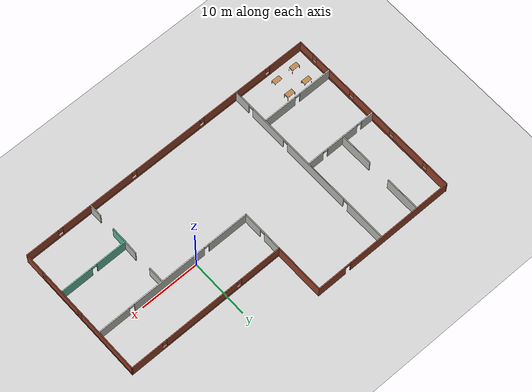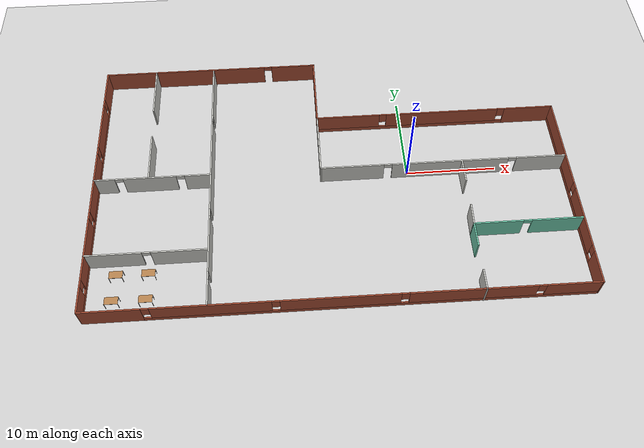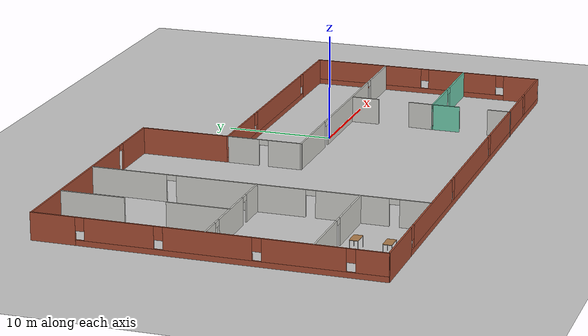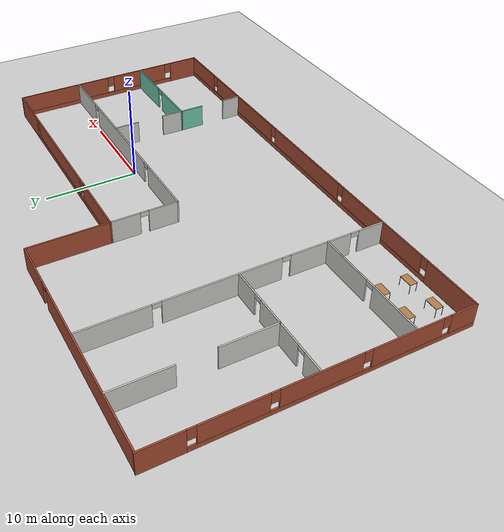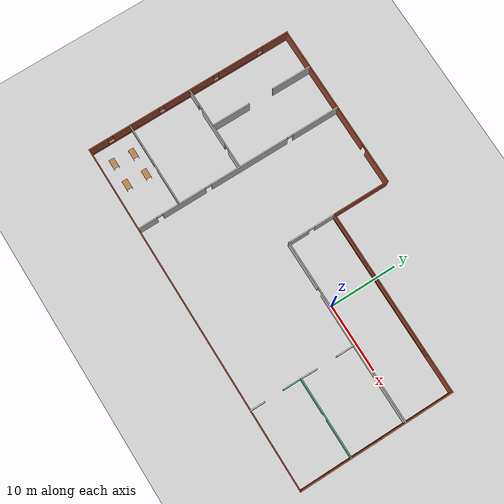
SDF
<sdf version="1.6">
 <world name="default">
  <model name="ground_plane">
   <static>1</static>
   <link name="link">
    <collision name="collision">
     <geometry><plane><normal>0 0 1</normal><size>100 100</size></plane></geometry>
     <surface><friction><ode><mu>100</mu><mu2>50</mu2></ode></friction></surface>
    </collision>
    <visual name="visual">
     <cast_shadows>0</cast_shadows>
     <geometry><plane><normal>0 0 1</normal><size>100 100</size></plane></geometry>
     <material>
      <script><uri>file://media/materials/scripts/gazebo.material</uri><name>Gazebo/Grey</name></script>
     </material>
    </visual>
   </link>
  </model>
  <model name="Building">
   <pose>-8.4819 -0.530793 0 0 -0 0</pose>
   <link name="Wall_11">
    <pose>-19.7067 0.118862 0 0 -0 0</pose>
    <visual name="Wall_11_Visual_0">
     <pose>-5.22567 0 1.25 0 -0 0</pose>
     <geometry><box><size>2.29865 0.15 2.5</size></box></geometry>
     <material>
      <script><uri>file://media/materials/scripts/gazebo.material</uri><name>Gazebo/CeilingTiled</name></script>
      <ambient>1 1 1 1</ambient>
     </material>
    </visual>
    <collision name="Wall_11_Collision_0">
     <geometry><box><size>2.29865 0.15 2.5</size></box></geometry>
     <pose>-5.22567 0 1.25 0 -0 0</pose>
    </collision>
    <visual name="Wall_11_Visual_1">
     <pose>-0.300767 0 1.25 0 -0 0</pose>
     <geometry><box><size>5.75116 0.15 2.5</size></box></geometry>
     <material>
      <script><uri>file://media/materials/scripts/gazebo.material</uri><name>Gazebo/CeilingTiled</name></script>
      <ambient>1 1 1 1</ambient>
     </material>
    </visual>
    <collision name="Wall_11_Collision_1">
     <geometry><box><size>5.75116 0.15 2.5</size></box></geometry>
     <pose>-0.300767 0 1.25 0 -0 0</pose>
    </collision>
    <visual name="Wall_11_Visual_2">
     <pose>4.92491 0 1.25 0 -0 0</pose>
     <geometry><box><size>2.90019 0.15 2.5</size></box></geometry>
     <material>
      <script><uri>file://media/materials/scripts/gazebo.material</uri><name>Gazebo/CeilingTiled</name></script>
      <ambient>1 1 1 1</ambient>
     </material>
    </visual>
    <collision name="Wall_11_Collision_2">
     <geometry><box><size>2.90019 0.15 2.5</size></box></geometry>
     <pose>4.92491 0 1.25 0 -0 0</pose>
    </collision>
    <visual name="Wall_11_Visual_3">
     <pose>-3.62635 0 2.25 0 -0 0</pose>
     <geometry><box><size>0.9 0.15 0.5</size></box></geometry>
     <material>
      <script><uri>file://media/materials/scripts/gazebo.material</uri><name>Gazebo/CeilingTiled</name></script>
      <ambient>1 1 1 1</ambient>
     </material>
    </visual>
    <collision name="Wall_11_Collision_3">
     <geometry><box><size>0.9 0.15 0.5</size></box></geometry>
     <pose>-3.62635 0 2.25 0 -0 0</pose>
    </collision>
    <visual name="Wall_11_Visual_4">
     <pose>3.02481 0 2.25 0 -0 0</pose>
     <geometry><box><size>0.9 0.15 0.5</size></box></geometry>
     <material>
      <script><uri>file://media/materials/scripts/gazebo.material</uri><name>Gazebo/CeilingTiled</name></script>
      <ambient>1 1 1 1</ambient>
     </material>
    </visual>
    <collision name="Wall_11_Collision_4">
     <geometry><box><size>0.9 0.15 0.5</size></box></geometry>
     <pose>3.02481 0 2.25 0 -0 0</pose>
    </collision>
   </link>
   <link name="Wall_13">
    <pose>-1.3 3.68488 0 0 0 -1.57082</pose>
    <visual name="Wall_13_Visual_0">
     <pose>-2.05181 0 1.25 0 -0 0</pose>
     <geometry><box><size>3.14637 0.15 2.5</size></box></geometry>
     <material>
      <script><uri>file://media/materials/scripts/gazebo.material</uri><name>Gazebo/CeilingTiled</name></script>
      <ambient>0.435294 0.796078 0.67451 1</ambient>
     </material>
    </visual>
    <collision name="Wall_13_Collision_0">
     <geometry><box><size>3.14637 0.15 2.5</size></box></geometry>
     <pose>-2.05181 0 1.25 0 -0 0</pose>
    </collision>
    <visual name="Wall_13_Visual_1">
     <pose>2.02319 0 1.25 0 -0 0</pose>
     <geometry><box><size>3.20363 0.15 2.5</size></box></geometry>
     <material>
      <script><uri>file://media/materials/scripts/gazebo.material</uri><name>Gazebo/CeilingTiled</name></script>
      <ambient>0.435294 0.796078 0.67451 1</ambient>
     </material>
    </visual>
    <collision name="Wall_13_Collision_1">
     <geometry><box><size>3.20363 0.15 2.5</size></box></geometry>
     <pose>2.02319 0 1.25 0 -0 0</pose>
    </collision>
    <visual name="Wall_13_Visual_2">
     <pose>-0.028629 0 2.25 0 -0 0</pose>
     <geometry><box><size>0.9 0.15 0.5</size></box></geometry>
     <material>
      <script><uri>file://media/materials/scripts/gazebo.material</uri><name>Gazebo/CeilingTiled</name></script>
      <ambient>0.435294 0.796078 0.67451 1</ambient>
     </material>
    </visual>
    <collision name="Wall_13_Collision_2">
     <geometry><box><size>0.9 0.15 0.5</size></box></geometry>
     <pose>-0.028629 0 2.25 0 -0 0</pose>
    </collision>
   </link>
   <link name="Wall_14">
    <pose>12.3749 0.134961 0 0 -0 0</pose>
    <visual name="Wall_14_Visual_0">
     <pose>-10.2012 0 1.25 0 -0 0</pose>
     <geometry><box><size>7.09767 0.15 2.5</size></box></geometry>
     <material>
      <script><uri>file://media/materials/scripts/gazebo.material</uri><name>Gazebo/CeilingTiled</name></script>
      <ambient>0.435294 0.796078 0.67451 1</ambient>
     </material>
    </visual>
    <collision name="Wall_14_Collision_0">
     <geometry><box><size>7.09767 0.15 2.5</size></box></geometry>
     <pose>-10.2012 0 1.25 0 -0 0</pose>
    </collision>
    <visual name="Wall_14_Visual_1">
     <pose>0.731858 0 1.25 0 -0 0</pose>
     <geometry><box><size>12.9684 0.15 2.5</size></box></geometry>
     <material>
      <script><uri>file://media/materials/scripts/gazebo.material</uri><name>Gazebo/CeilingTiled</name></script>
      <ambient>0.435294 0.796078 0.67451 1</ambient>
     </material>
    </visual>
    <collision name="Wall_14_Collision_1">
     <geometry><box><size>12.9684 0.15 2.5</size></box></geometry>
     <pose>0.731858 0 1.25 0 -0 0</pose>
    </collision>
    <visual name="Wall_14_Visual_2">
     <pose>10.933 0 1.25 0 -0 0</pose>
     <geometry><box><size>5.63395 0.15 2.5</size></box></geometry>
     <material>
      <script><uri>file://media/materials/scripts/gazebo.material</uri><name>Gazebo/CeilingTiled</name></script>
      <ambient>0.435294 0.796078 0.67451 1</ambient>
     </material>
    </visual>
    <collision name="Wall_14_Collision_2">
     <geometry><box><size>5.63395 0.15 2.5</size></box></geometry>
     <pose>10.933 0 1.25 0 -0 0</pose>
    </collision>
    <visual name="Wall_14_Visual_3">
     <pose>-6.20233 0 2.25 0 -0 0</pose>
     <geometry><box><size>0.9 0.15 0.5</size></box></geometry>
     <material>
      <script><uri>file://media/materials/scripts/gazebo.material</uri><name>Gazebo/CeilingTiled</name></script>
      <ambient>0.435294 0.796078 0.67451 1</ambient>
     </material>
    </visual>
    <collision name="Wall_14_Collision_3">
     <geometry><box><size>0.9 0.15 0.5</size></box></geometry>
     <pose>-6.20233 0 2.25 0 -0 0</pose>
    </collision>
    <visual name="Wall_14_Visual_4">
     <pose>7.66605 0 2.25 0 -0 0</pose>
     <geometry><box><size>0.9 0.15 0.5</size></box></geometry>
     <material>
      <script><uri>file://media/materials/scripts/gazebo.material</uri><name>Gazebo/CeilingTiled</name></script>
      <ambient>0.435294 0.796078 0.67451 1</ambient>
     </material>
    </visual>
    <collision name="Wall_14_Collision_4">
     <geometry><box><size>0.9 0.15 0.5</size></box></geometry>
     <pose>7.66605 0 2.25 0 -0 0</pose>
    </collision>
   </link>
   <link name="Wall_18">
    <pose>20.1246 -8.02227 0 0 -0 0</pose>
    <visual name="Wall_18_Visual_0">
     <pose>-3.20431 0 1.25 0 -0 0</pose>
     <geometry><box><size>5.34138 0.15 2.5</size></box></geometry>
     <material>
      <script><uri>file://media/materials/scripts/gazebo.material</uri><name>Gazebo/Grey</name></script>
      <ambient>0.435294 0.796078 0.67451 1</ambient>
     </material>
    </visual>
    <collision name="Wall_18_Collision_0">
     <geometry><box><size>5.34138 0.15 2.5</size></box></geometry>
     <pose>-3.20431 0 1.25 0 -0 0</pose>
    </collision>
    <visual name="Wall_18_Visual_1">
     <pose>3.12069 0 1.25 0 -0 0</pose>
     <geometry><box><size>5.50862 0.15 2.5</size></box></geometry>
     <material>
      <script><uri>file://media/materials/scripts/gazebo.material</uri><name>Gazebo/Grey</name></script>
      <ambient>0.435294 0.796078 0.67451 1</ambient>
     </material>
    </visual>
    <collision name="Wall_18_Collision_1">
     <geometry><box><size>5.50862 0.15 2.5</size></box></geometry>
     <pose>3.12069 0 1.25 0 -0 0</pose>
    </collision>
    <visual name="Wall_18_Visual_2">
     <pose>-0.083618 0 2.25 0 -0 0</pose>
     <geometry><box><size>0.9 0.15 0.5</size></box></geometry>
     <material>
      <script><uri>file://media/materials/scripts/gazebo.material</uri><name>Gazebo/Grey</name></script>
      <ambient>0.435294 0.796078 0.67451 1</ambient>
     </material>
    </visual>
    <collision name="Wall_18_Collision_2">
     <geometry><box><size>0.9 0.15 0.5</size></box></geometry>
     <pose>-0.083618 0 2.25 0 -0 0</pose>
    </collision>
   </link>
   <link name="Wall_2">
    <pose>-26.0501 0.075325 0 0 0 -1.5708</pose>
    <visual name="Wall_2_Visual_0">
     <pose>-13.5818 0 1.25 0 -0 0</pose>
     <geometry><box><size>4.08649 0.15 2.5</size></box></geometry>
     <material>
      <script><uri>file://media/materials/scripts/gazebo.material</uri><name>Gazebo/Bricks</name></script>
      <ambient>1 1 1 1</ambient>
     </material>
    </visual>
    <collision name="Wall_2_Collision_0">
     <geometry><box><size>4.08649 0.15 2.5</size></box></geometry>
     <pose>-13.5818 0 1.25 0 -0 0</pose>
    </collision>
    <visual name="Wall_2_Visual_1">
     <pose>2.04324 0 0.25 0 -0 0</pose>
     <geometry><box><size>27.1635 0.15 0.5</size></box></geometry>
     <material>
      <script><uri>file://media/materials/scripts/gazebo.material</uri><name>Gazebo/Bricks</name></script>
      <ambient>1 1 1 1</ambient>
     </material>
    </visual>
    <collision name="Wall_2_Collision_1">
     <geometry><box><size>27.1635 0.15 0.5</size></box></geometry>
     <pose>2.04324 0 0.25 0 -0 0</pose>
    </collision>
    <visual name="Wall_2_Visual_2">
     <pose>-7.63604 0 1.5 0 -0 0</pose>
     <geometry><box><size>6.20495 0.15 2</size></box></geometry>
     <material>
      <script><uri>file://media/materials/scripts/gazebo.material</uri><name>Gazebo/Bricks</name></script>
      <ambient>1 1 1 1</ambient>
     </material>
    </visual>
    <collision name="Wall_2_Collision_2">
     <geometry><box><size>6.20495 0.15 2</size></box></geometry>
     <pose>-7.63604 0 1.5 0 -0 0</pose>
    </collision>
    <visual name="Wall_2_Visual_3">
     <pose>0.147238 0 1.5 0 -0 0</pose>
     <geometry><box><size>7.7616 0.15 2</size></box></geometry>
     <material>
      <script><uri>file://media/materials/scripts/gazebo.material</uri><name>Gazebo/Bricks</name></script>
      <ambient>1 1 1 1</ambient>
     </material>
    </visual>
    <collision name="Wall_2_Collision_3">
     <geometry><box><size>7.7616 0.15 2</size></box></geometry>
     <pose>0.147238 0 1.5 0 -0 0</pose>
    </collision>
    <visual name="Wall_2_Visual_4">
     <pose>8.42581 0 1.5 0 -0 0</pose>
     <geometry><box><size>7.19555 0.15 2</size></box></geometry>
     <material>
      <script><uri>file://media/materials/scripts/gazebo.material</uri><name>Gazebo/Bricks</name></script>
      <ambient>1 1 1 1</ambient>
     </material>
    </visual>
    <collision name="Wall_2_Collision_4">
     <geometry><box><size>7.19555 0.15 2</size></box></geometry>
     <pose>8.42581 0 1.5 0 -0 0</pose>
    </collision>
    <visual name="Wall_2_Visual_5">
     <pose>14.2243 0 1.5 0 -0 0</pose>
     <geometry><box><size>2.80141 0.15 2</size></box></geometry>
     <material>
      <script><uri>file://media/materials/scripts/gazebo.material</uri><name>Gazebo/Bricks</name></script>
      <ambient>1 1 1 1</ambient>
     </material>
    </visual>
    <collision name="Wall_2_Collision_5">
     <geometry><box><size>2.80141 0.15 2</size></box></geometry>
     <pose>14.2243 0 1.5 0 -0 0</pose>
    </collision>
    <visual name="Wall_2_Visual_6">
     <pose>-11.1385 0 1.9 0 -0 0</pose>
     <geometry><box><size>0.8 0.15 1.2</size></box></geometry>
     <material>
      <script><uri>file://media/materials/scripts/gazebo.material</uri><name>Gazebo/Bricks</name></script>
      <ambient>1 1 1 1</ambient>
     </material>
    </visual>
    <collision name="Wall_2_Collision_6">
     <geometry><box><size>0.8 0.15 1.2</size></box></geometry>
     <pose>-11.1385 0 1.9 0 -0 0</pose>
    </collision>
    <visual name="Wall_2_Visual_7">
     <pose>-4.13356 0 1.9 0 -0 0</pose>
     <geometry><box><size>0.8 0.15 1.2</size></box></geometry>
     <material>
      <script><uri>file://media/materials/scripts/gazebo.material</uri><name>Gazebo/Bricks</name></script>
      <ambient>1 1 1 1</ambient>
     </material>
    </visual>
    <collision name="Wall_2_Collision_7">
     <geometry><box><size>0.8 0.15 1.2</size></box></geometry>
     <pose>-4.13356 0 1.9 0 -0 0</pose>
    </collision>
    <visual name="Wall_2_Visual_8">
     <pose>4.42804 0 1.9 0 -0 0</pose>
     <geometry><box><size>0.8 0.15 1.2</size></box></geometry>
     <material>
      <script><uri>file://media/materials/scripts/gazebo.material</uri><name>Gazebo/Bricks</name></script>
      <ambient>1 1 1 1</ambient>
     </material>
    </visual>
    <collision name="Wall_2_Collision_8">
     <geometry><box><size>0.8 0.15 1.2</size></box></geometry>
     <pose>4.42804 0 1.9 0 -0 0</pose>
    </collision>
    <visual name="Wall_2_Visual_9">
     <pose>12.4236 0 1.9 0 -0 0</pose>
     <geometry><box><size>0.8 0.15 1.2</size></box></geometry>
     <material>
      <script><uri>file://media/materials/scripts/gazebo.material</uri><name>Gazebo/Bricks</name></script>
      <ambient>1 1 1 1</ambient>
     </material>
    </visual>
    <collision name="Wall_2_Collision_9">
     <geometry><box><size>0.8 0.15 1.2</size></box></geometry>
     <pose>12.4236 0 1.9 0 -0 0</pose>
    </collision>
   </link>
   <link name="Wall_21">
    <collision name="Wall_21_Collision">
     <geometry><box><size>2.75 0.15 2.5</size></box></geometry>
     <pose>0 0 1.25 0 -0 0</pose>
    </collision>
    <visual name="Wall_21_Visual">
     <pose>0 0 1.25 0 -0 0</pose>
     <geometry><box><size>2.75 0.15 2.5</size></box></geometry>
     <material>
      <script><uri>file://media/materials/scripts/gazebo.material</uri><name>Gazebo/CeilingTiled</name></script>
      <ambient>0.435294 0.796078 0.67451 1</ambient>
     </material>
    </visual>
    <pose>14.4041 -1.23643 0 0 0 -1.5708</pose>
   </link>
   <link name="Wall_23">
    <collision name="Wall_23_Collision">
     <geometry><box><size>2.45989 0.15 2.5</size></box></geometry>
     <pose>0 0 1.25 0 -0 0</pose>
    </collision>
    <visual name="Wall_23_Visual">
     <pose>0 0 1.25 0 -0 0</pose>
     <geometry><box><size>2.45989 0.15 2.5</size></box></geometry>
     <material>
      <script><uri>file://media/materials/scripts/gazebo.material</uri><name>Gazebo/CeilingTiled</name></script>
      <ambient>0.435294 0.796078 0.67451 1</ambient>
     </material>
    </visual>
    <pose>14.3644 -6.86801 0 0 0 -1.60523</pose>
   </link>
   <link name="Wall_25">
    <collision name="Wall_25_Collision">
     <geometry><box><size>2.75 0.15 2.5</size></box></geometry>
     <pose>0 0 1.25 0 -0 0</pose>
    </collision>
    <visual name="Wall_25_Visual">
     <pose>0 0 1.25 0 -0 0</pose>
     <geometry><box><size>2.75 0.15 2.5</size></box></geometry>
     <material>
      <script><uri>file://media/materials/scripts/gazebo.material</uri><name>Gazebo/Grey</name></script>
      <ambient>0.435294 0.796078 0.67451 1</ambient>
     </material>
    </visual>
    <pose>14.3246 -9.32227 0 0 0 -1.5708</pose>
   </link>
   <link name="Wall_27">
    <collision name="Wall_27_Collision">
     <geometry><box><size>2.25 0.15 2.5</size></box></geometry>
     <pose>0 0 1.25 0 -0 0</pose>
    </collision>
    <visual name="Wall_27_Visual">
     <pose>0 0 1.25 0 -0 0</pose>
     <geometry><box><size>2.25 0.15 2.5</size></box></geometry>
     <material>
      <script><uri>file://media/materials/scripts/gazebo.material</uri><name>Gazebo/CeilingTiled</name></script>
      <ambient>0.435294 0.796078 0.67451 1</ambient>
     </material>
    </visual>
    <pose>14.3228 -14.5753 0 0 0 -1.5708</pose>
   </link>
   <link name="Wall_29">
    <collision name="Wall_29_Collision">
     <geometry><box><size>6 0.15 2.5</size></box></geometry>
     <pose>0 0 1.25 0 -0 0</pose>
    </collision>
    <visual name="Wall_29_Visual">
     <pose>0 0 1.25 0 -0 0</pose>
     <geometry><box><size>6 0.15 2.5</size></box></geometry>
     <material>
      <script><uri>file://media/materials/scripts/gazebo.material</uri><name>Gazebo/CeilingTiled</name></script>
      <ambient>1 1 1 1</ambient>
     </material>
    </visual>
    <pose>-20.2198 12.605 0 0 0 -1.5708</pose>
   </link>
   <link name="Wall_3">
    <pose>0.023328 -15.5683 0 0 0 -0.001798</pose>
    <visual name="Wall_3_Visual_0">
     <pose>-22.9832 0 1.25 0 -0 0</pose>
     <geometry><box><size>6.23696 0.15 2.5</size></box></geometry>
     <material>
      <script><uri>file://media/materials/scripts/gazebo.material</uri><name>Gazebo/Bricks</name></script>
      <ambient>1 1 1 1</ambient>
     </material>
    </visual>
    <collision name="Wall_3_Collision_0">
     <geometry><box><size>6.23696 0.15 2.5</size></box></geometry>
     <pose>-22.9832 0 1.25 0 -0 0</pose>
    </collision>
    <visual name="Wall_3_Visual_1">
     <pose>3.11848 0 0.25 0 -0 0</pose>
     <geometry><box><size>45.9663 0.15 0.5</size></box></geometry>
     <material>
      <script><uri>file://media/materials/scripts/gazebo.material</uri><name>Gazebo/Bricks</name></script>
      <ambient>1 1 1 1</ambient>
     </material>
    </visual>
    <collision name="Wall_3_Collision_1">
     <geometry><box><size>45.9663 0.15 0.5</size></box></geometry>
     <pose>3.11848 0 0.25 0 -0 0</pose>
    </collision>
    <visual name="Wall_3_Visual_2">
     <pose>-13.0612 0 1.5 0 -0 0</pose>
     <geometry><box><size>12.007 0.15 2</size></box></geometry>
     <material>
      <script><uri>file://media/materials/scripts/gazebo.material</uri><name>Gazebo/Bricks</name></script>
      <ambient>1 1 1 1</ambient>
     </material>
    </visual>
    <collision name="Wall_3_Collision_2">
     <geometry><box><size>12.007 0.15 2</size></box></geometry>
     <pose>-13.0612 0 1.5 0 -0 0</pose>
    </collision>
    <visual name="Wall_3_Visual_3">
     <pose>-0.218864 0 1.5 0 -0 0</pose>
     <geometry><box><size>12.0776 0.15 2</size></box></geometry>
     <material>
      <script><uri>file://media/materials/scripts/gazebo.material</uri><name>Gazebo/Bricks</name></script>
      <ambient>1 1 1 1</ambient>
     </material>
    </visual>
    <collision name="Wall_3_Collision_3">
     <geometry><box><size>12.0776 0.15 2</size></box></geometry>
     <pose>-0.218864 0 1.5 0 -0 0</pose>
    </collision>
    <visual name="Wall_3_Visual_4">
     <pose>13.0836 0 1.5 0 -0 0</pose>
     <geometry><box><size>12.9272 0.15 2</size></box></geometry>
     <material>
      <script><uri>file://media/materials/scripts/gazebo.material</uri><name>Gazebo/Bricks</name></script>
      <ambient>1 1 1 1</ambient>
     </material>
    </visual>
    <collision name="Wall_3_Collision_4">
     <geometry><box><size>12.9272 0.15 2</size></box></geometry>
     <pose>13.0836 0 1.5 0 -0 0</pose>
    </collision>
    <visual name="Wall_3_Visual_5">
     <pose>23.2244 0 1.5 0 -0 0</pose>
     <geometry><box><size>5.75446 0.15 2</size></box></geometry>
     <material>
      <script><uri>file://media/materials/scripts/gazebo.material</uri><name>Gazebo/Bricks</name></script>
      <ambient>1 1 1 1</ambient>
     </material>
    </visual>
    <collision name="Wall_3_Collision_5">
     <geometry><box><size>5.75446 0.15 2</size></box></geometry>
     <pose>23.2244 0 1.5 0 -0 0</pose>
    </collision>
    <visual name="Wall_3_Visual_6">
     <pose>-19.4647 0 1.9 0 -0 0</pose>
     <geometry><box><size>0.8 0.15 1.2</size></box></geometry>
     <material>
      <script><uri>file://media/materials/scripts/gazebo.material</uri><name>Gazebo/Bricks</name></script>
      <ambient>1 1 1 1</ambient>
     </material>
    </visual>
    <collision name="Wall_3_Collision_6">
     <geometry><box><size>0.8 0.15 1.2</size></box></geometry>
     <pose>-19.4647 0 1.9 0 -0 0</pose>
    </collision>
    <visual name="Wall_3_Visual_7">
     <pose>-6.65768 0 1.9 0 -0 0</pose>
     <geometry><box><size>0.8 0.15 1.2</size></box></geometry>
     <material>
      <script><uri>file://media/materials/scripts/gazebo.material</uri><name>Gazebo/Bricks</name></script>
      <ambient>1 1 1 1</ambient>
     </material>
    </visual>
    <collision name="Wall_3_Collision_7">
     <geometry><box><size>0.8 0.15 1.2</size></box></geometry>
     <pose>-6.65768 0 1.9 0 -0 0</pose>
    </collision>
    <visual name="Wall_3_Visual_8">
     <pose>6.21995 0 1.9 0 -0 0</pose>
     <geometry><box><size>0.8 0.15 1.2</size></box></geometry>
     <material>
      <script><uri>file://media/materials/scripts/gazebo.material</uri><name>Gazebo/Bricks</name></script>
      <ambient>1 1 1 1</ambient>
     </material>
    </visual>
    <collision name="Wall_3_Collision_8">
     <geometry><box><size>0.8 0.15 1.2</size></box></geometry>
     <pose>6.21995 0 1.9 0 -0 0</pose>
    </collision>
    <visual name="Wall_3_Visual_9">
     <pose>19.9472 0 1.9 0 -0 0</pose>
     <geometry><box><size>0.8 0.15 1.2</size></box></geometry>
     <material>
      <script><uri>file://media/materials/scripts/gazebo.material</uri><name>Gazebo/Bricks</name></script>
      <ambient>1 1 1 1</ambient>
     </material>
    </visual>
    <collision name="Wall_3_Collision_9">
     <geometry><box><size>0.8 0.15 1.2</size></box></geometry>
     <pose>19.9472 0 1.9 0 -0 0</pose>
    </collision>
   </link>
   <link name="Wall_32">
    <collision name="Wall_32_Collision">
     <geometry><box><size>5.75 0.15 2.5</size></box></geometry>
     <pose>0 0 1.25 0 -0 0</pose>
    </collision>
    <visual name="Wall_32_Visual">
     <pose>0 0 1.25 0 -0 0</pose>
     <geometry><box><size>5.75 0.15 2.5</size></box></geometry>
     <material>
      <script><uri>file://media/materials/scripts/gazebo.material</uri><name>Gazebo/CeilingTiled</name></script>
      <ambient>1 1 1 1</ambient>
     </material>
    </visual>
    <pose>-20.149 2.96555 0 0 0 -1.5708</pose>
   </link>
   <link name="Wall_34">
    <pose>-19.7219 -9.23495 0 0 -0 0</pose>
    <visual name="Wall_34_Visual_0">
     <pose>-3.41381 0 1.25 0 -0 0</pose>
     <geometry><box><size>5.92238 0.15 2.5</size></box></geometry>
     <material>
      <script><uri>file://media/materials/scripts/gazebo.material</uri><name>Gazebo/CeilingTiled</name></script>
      <ambient>1 1 1 1</ambient>
     </material>
    </visual>
    <collision name="Wall_34_Collision_0">
     <geometry><box><size>5.92238 0.15 2.5</size></box></geometry>
     <pose>-3.41381 0 1.25 0 -0 0</pose>
    </collision>
    <visual name="Wall_34_Visual_1">
     <pose>3.41119 0 1.25 0 -0 0</pose>
     <geometry><box><size>5.92762 0.15 2.5</size></box></geometry>
     <material>
      <script><uri>file://media/materials/scripts/gazebo.material</uri><name>Gazebo/CeilingTiled</name></script>
      <ambient>1 1 1 1</ambient>
     </material>
    </visual>
    <collision name="Wall_34_Collision_1">
     <geometry><box><size>5.92762 0.15 2.5</size></box></geometry>
     <pose>3.41119 0 1.25 0 -0 0</pose>
    </collision>
    <visual name="Wall_34_Visual_2">
     <pose>-0.002623 0 2.25 0 -0 0</pose>
     <geometry><box><size>0.9 0.15 0.5</size></box></geometry>
     <material>
      <script><uri>file://media/materials/scripts/gazebo.material</uri><name>Gazebo/CeilingTiled</name></script>
      <ambient>1 1 1 1</ambient>
     </material>
    </visual>
    <collision name="Wall_34_Collision_2">
     <geometry><box><size>0.9 0.15 0.5</size></box></geometry>
     <pose>-0.002623 0 2.25 0 -0 0</pose>
    </collision>
   </link>
   <link name="Wall_4">
    <pose>26.0499 -4.19004 0 0 -0 1.5708</pose>
    <visual name="Wall_4_Visual_0">
     <pose>-9.74608 0 1.25 0 -0 0</pose>
     <geometry><box><size>3.50783 0.15 2.5</size></box></geometry>
     <material>
      <script><uri>file://media/materials/scripts/gazebo.material</uri><name>Gazebo/Bricks</name></script>
      <ambient>1 1 1 1</ambient>
     </material>
    </visual>
    <collision name="Wall_4_Collision_0">
     <geometry><box><size>3.50783 0.15 2.5</size></box></geometry>
     <pose>-9.74608 0 1.25 0 -0 0</pose>
    </collision>
    <visual name="Wall_4_Visual_1">
     <pose>1.75392 0 0.25 0 -0 0</pose>
     <geometry><box><size>19.4922 0.15 0.5</size></box></geometry>
     <material>
      <script><uri>file://media/materials/scripts/gazebo.material</uri><name>Gazebo/Bricks</name></script>
      <ambient>1 1 1 1</ambient>
     </material>
    </visual>
    <collision name="Wall_4_Collision_1">
     <geometry><box><size>19.4922 0.15 0.5</size></box></geometry>
     <pose>1.75392 0 0.25 0 -0 0</pose>
    </collision>
    <visual name="Wall_4_Visual_2">
     <pose>-3.70053 0 1.5 0 -0 0</pose>
     <geometry><box><size>6.98328 0.15 2</size></box></geometry>
     <material>
      <script><uri>file://media/materials/scripts/gazebo.material</uri><name>Gazebo/Bricks</name></script>
      <ambient>1 1 1 1</ambient>
     </material>
    </visual>
    <collision name="Wall_4_Collision_2">
     <geometry><box><size>6.98328 0.15 2</size></box></geometry>
     <pose>-3.70053 0 1.5 0 -0 0</pose>
    </collision>
    <visual name="Wall_4_Visual_3">
     <pose>6.04556 0 1.5 0 -0 0</pose>
     <geometry><box><size>10.9089 0.15 2</size></box></geometry>
     <material>
      <script><uri>file://media/materials/scripts/gazebo.material</uri><name>Gazebo/Bricks</name></script>
      <ambient>1 1 1 1</ambient>
     </material>
    </visual>
    <collision name="Wall_4_Collision_3">
     <geometry><box><size>10.9089 0.15 2</size></box></geometry>
     <pose>6.04556 0 1.5 0 -0 0</pose>
    </collision>
    <visual name="Wall_4_Visual_4">
     <pose>-7.59217 0 1.9 0 -0 0</pose>
     <geometry><box><size>0.8 0.15 1.2</size></box></geometry>
     <material>
      <script><uri>file://media/materials/scripts/gazebo.material</uri><name>Gazebo/Bricks</name></script>
      <ambient>1 1 1 1</ambient>
     </material>
    </visual>
    <collision name="Wall_4_Collision_4">
     <geometry><box><size>0.8 0.15 1.2</size></box></geometry>
     <pose>-7.59217 0 1.9 0 -0 0</pose>
    </collision>
    <visual name="Wall_4_Visual_5">
     <pose>0.19111 0 1.9 0 -0 0</pose>
     <geometry><box><size>0.8 0.15 1.2</size></box></geometry>
     <material>
      <script><uri>file://media/materials/scripts/gazebo.material</uri><name>Gazebo/Bricks</name></script>
      <ambient>1 1 1 1</ambient>
     </material>
    </visual>
    <collision name="Wall_4_Collision_5">
     <geometry><box><size>0.8 0.15 1.2</size></box></geometry>
     <pose>0.19111 0 1.9 0 -0 0</pose>
    </collision>
   </link>
   <link name="Wall_5">
    <pose>12.375 7.23488 0 0 0 -3.14159</pose>
    <visual name="Wall_5_Visual_0">
     <pose>-10.9434 0 1.25 0 -0 0</pose>
     <geometry><box><size>5.61323 0.15 2.5</size></box></geometry>
     <material>
      <script><uri>file://media/materials/scripts/gazebo.material</uri><name>Gazebo/Bricks</name></script>
      <ambient>1 1 1 1</ambient>
     </material>
    </visual>
    <collision name="Wall_5_Collision_0">
     <geometry><box><size>5.61323 0.15 2.5</size></box></geometry>
     <pose>-10.9434 0 1.25 0 -0 0</pose>
    </collision>
    <visual name="Wall_5_Visual_1">
     <pose>2.80662 0 0.25 0 -0 0</pose>
     <geometry><box><size>21.8868 0.15 0.5</size></box></geometry>
     <material>
      <script><uri>file://media/materials/scripts/gazebo.material</uri><name>Gazebo/Bricks</name></script>
      <ambient>1 1 1 1</ambient>
     </material>
    </visual>
    <collision name="Wall_5_Collision_1">
     <geometry><box><size>21.8868 0.15 0.5</size></box></geometry>
     <pose>2.80662 0 0.25 0 -0 0</pose>
    </collision>
    <visual name="Wall_5_Visual_2">
     <pose>-0.837989 0 1.5 0 -0 0</pose>
     <geometry><box><size>12.9976 0.15 2</size></box></geometry>
     <material>
      <script><uri>file://media/materials/scripts/gazebo.material</uri><name>Gazebo/Bricks</name></script>
      <ambient>1 1 1 1</ambient>
     </material>
    </visual>
    <collision name="Wall_5_Collision_2">
     <geometry><box><size>12.9976 0.15 2</size></box></geometry>
     <pose>-0.837989 0 1.5 0 -0 0</pose>
    </collision>
    <visual name="Wall_5_Visual_3">
     <pose>10.1054 0 1.5 0 -0 0</pose>
     <geometry><box><size>7.28921 0.15 2</size></box></geometry>
     <material>
      <script><uri>file://media/materials/scripts/gazebo.material</uri><name>Gazebo/Bricks</name></script>
      <ambient>1 1 1 1</ambient>
     </material>
    </visual>
    <collision name="Wall_5_Collision_3">
     <geometry><box><size>7.28921 0.15 2</size></box></geometry>
     <pose>10.1054 0 1.5 0 -0 0</pose>
    </collision>
    <visual name="Wall_5_Visual_4">
     <pose>-7.73677 0 1.9 0 -0 0</pose>
     <geometry><box><size>0.8 0.15 1.2</size></box></geometry>
     <material>
      <script><uri>file://media/materials/scripts/gazebo.material</uri><name>Gazebo/Bricks</name></script>
      <ambient>1 1 1 1</ambient>
     </material>
    </visual>
    <collision name="Wall_5_Collision_4">
     <geometry><box><size>0.8 0.15 1.2</size></box></geometry>
     <pose>-7.73677 0 1.9 0 -0 0</pose>
    </collision>
    <visual name="Wall_5_Visual_5">
     <pose>6.06079 0 1.9 0 -0 0</pose>
     <geometry><box><size>0.8 0.15 1.2</size></box></geometry>
     <material>
      <script><uri>file://media/materials/scripts/gazebo.material</uri><name>Gazebo/Bricks</name></script>
      <ambient>1 1 1 1</ambient>
     </material>
    </visual>
    <collision name="Wall_5_Collision_5">
     <geometry><box><size>0.8 0.15 1.2</size></box></geometry>
     <pose>6.06079 0 1.9 0 -0 0</pose>
    </collision>
   </link>
   <link name="Wall_6">
    <collision name="Wall_6_Collision">
     <geometry><box><size>8.5 0.15 2.5</size></box></geometry>
     <pose>0 0 1.25 0 -0 0</pose>
    </collision>
    <visual name="Wall_6_Visual">
     <pose>0 0 1.25 0 -0 0</pose>
     <geometry><box><size>8.5 0.15 2.5</size></box></geometry>
     <material>
      <script><uri>file://media/materials/scripts/gazebo.material</uri><name>Gazebo/Bricks</name></script>
      <ambient>1 1 1 1</ambient>
     </material>
    </visual>
    <pose>-1.29993 11.4098 0 0 -0 1.5708</pose>
   </link>
   <link name="Wall_7">
    <pose>-13.6 15.5849 0 0 -0 3.14159</pose>
    <visual name="Wall_7_Visual_0">
     <pose>-9.7892 0 1.25 0 -0 0</pose>
     <geometry><box><size>5.17159 0.15 2.5</size></box></geometry>
     <material>
      <script><uri>file://media/materials/scripts/gazebo.material</uri><name>Gazebo/Bricks</name></script>
      <ambient>1 1 1 1</ambient>
     </material>
    </visual>
    <collision name="Wall_7_Collision_0">
     <geometry><box><size>5.17159 0.15 2.5</size></box></geometry>
     <pose>-9.7892 0 1.25 0 -0 0</pose>
    </collision>
    <visual name="Wall_7_Visual_1">
     <pose>3.0358 0 1.25 0 -0 0</pose>
     <geometry><box><size>18.6784 0.15 2.5</size></box></geometry>
     <material>
      <script><uri>file://media/materials/scripts/gazebo.material</uri><name>Gazebo/Bricks</name></script>
      <ambient>1 1 1 1</ambient>
     </material>
    </visual>
    <collision name="Wall_7_Collision_1">
     <geometry><box><size>18.6784 0.15 2.5</size></box></geometry>
     <pose>3.0358 0 1.25 0 -0 0</pose>
    </collision>
    <visual name="Wall_7_Visual_2">
     <pose>-6.75341 0 2.25 0 -0 0</pose>
     <geometry><box><size>0.9 0.15 0.5</size></box></geometry>
     <material>
      <script><uri>file://media/materials/scripts/gazebo.material</uri><name>Gazebo/Bricks</name></script>
      <ambient>1 1 1 1</ambient>
     </material>
    </visual>
    <collision name="Wall_7_Collision_2">
     <geometry><box><size>0.9 0.15 0.5</size></box></geometry>
     <pose>-6.75341 0 2.25 0 -0 0</pose>
    </collision>
   </link>
   <link name="Wall_9">
    <pose>-13.374 0.008937 0 0 0 -1.5708</pose>
    <visual name="Wall_9_Visual_0">
     <pose>-12.0479 0 1.25 0 -0 0</pose>
     <geometry><box><size>7.15417 0.15 2.5</size></box></geometry>
     <material>
      <script><uri>file://media/materials/scripts/gazebo.material</uri><name>Gazebo/CeilingTiled</name></script>
      <ambient>1 1 1 1</ambient>
     </material>
    </visual>
    <collision name="Wall_9_Collision_0">
     <geometry><box><size>7.15417 0.15 2.5</size></box></geometry>
     <pose>-12.0479 0 1.25 0 -0 0</pose>
    </collision>
    <visual name="Wall_9_Visual_1">
     <pose>-1.61732 0 1.25 0 -0 0</pose>
     <geometry><box><size>11.907 0.15 2.5</size></box></geometry>
     <material>
      <script><uri>file://media/materials/scripts/gazebo.material</uri><name>Gazebo/CeilingTiled</name></script>
      <ambient>1 1 1 1</ambient>
     </material>
    </visual>
    <collision name="Wall_9_Collision_1">
     <geometry><box><size>11.907 0.15 2.5</size></box></geometry>
     <pose>-1.61732 0 1.25 0 -0 0</pose>
    </collision>
    <visual name="Wall_9_Visual_2">
     <pose>8.53632 0 1.25 0 -0 0</pose>
     <geometry><box><size>6.60025 0.15 2.5</size></box></geometry>
     <material>
      <script><uri>file://media/materials/scripts/gazebo.material</uri><name>Gazebo/CeilingTiled</name></script>
      <ambient>1 1 1 1</ambient>
     </material>
    </visual>
    <collision name="Wall_9_Collision_2">
     <geometry><box><size>6.60025 0.15 2.5</size></box></geometry>
     <pose>8.53632 0 1.25 0 -0 0</pose>
    </collision>
    <visual name="Wall_9_Visual_3">
     <pose>14.1807 0 1.25 0 -0 0</pose>
     <geometry><box><size>2.88856 0.15 2.5</size></box></geometry>
     <material>
      <script><uri>file://media/materials/scripts/gazebo.material</uri><name>Gazebo/CeilingTiled</name></script>
      <ambient>1 1 1 1</ambient>
     </material>
    </visual>
    <collision name="Wall_9_Collision_3">
     <geometry><box><size>2.88856 0.15 2.5</size></box></geometry>
     <pose>14.1807 0 1.25 0 -0 0</pose>
    </collision>
    <visual name="Wall_9_Visual_4">
     <pose>-8.02083 0 2.25 0 -0 0</pose>
     <geometry><box><size>0.9 0.15 0.5</size></box></geometry>
     <material>
      <script><uri>file://media/materials/scripts/gazebo.material</uri><name>Gazebo/CeilingTiled</name></script>
      <ambient>1 1 1 1</ambient>
     </material>
    </visual>
    <collision name="Wall_9_Collision_4">
     <geometry><box><size>0.9 0.15 0.5</size></box></geometry>
     <pose>-8.02083 0 2.25 0 -0 0</pose>
    </collision>
    <visual name="Wall_9_Visual_5">
     <pose>4.78619 0 2.25 0 -0 0</pose>
     <geometry><box><size>0.9 0.15 0.5</size></box></geometry>
     <material>
      <script><uri>file://media/materials/scripts/gazebo.material</uri><name>Gazebo/CeilingTiled</name></script>
      <ambient>1 1 1 1</ambient>
     </material>
    </visual>
    <collision name="Wall_9_Collision_5">
     <geometry><box><size>0.9 0.15 0.5</size></box></geometry>
     <pose>4.78619 0 2.25 0 -0 0</pose>
    </collision>
    <visual name="Wall_9_Visual_6">
     <pose>12.2864 0 2.25 0 -0 0</pose>
     <geometry><box><size>0.9 0.15 0.5</size></box></geometry>
     <material>
      <script><uri>file://media/materials/scripts/gazebo.material</uri><name>Gazebo/CeilingTiled</name></script>
      <ambient>1 1 1 1</ambient>
     </material>
    </visual>
    <collision name="Wall_9_Collision_6">
     <geometry><box><size>0.9 0.15 0.5</size></box></geometry>
     <pose>12.2864 0 2.25 0 -0 0</pose>
    </collision>
   </link>
   <static>1</static>
  </model>
  <model name="table_7">
   <static>0</static>
   <link name="link">
    <collision name="surface">
     <pose>0 0 1 0 -0 0</pose>
     <geometry><box><size>1.5 0.8 0.03</size></box></geometry>
     <surface><friction><ode><mu>0.6</mu><mu2>0.6</mu2></ode></friction></surface>
    </collision>
    <visual name="visual1">
     <pose>0 0 1 0 -0 0</pose>
     <geometry><box><size>1.4 0.8 0.04</size></box></geometry>
     <material>
      <script><uri>file://media/materials/scripts/gazebo.material</uri><name>Gazebo/Wood</name></script>
     </material>
    </visual>
    <collision name="front_left_leg">
     <pose>0.68 0.38 0.5 0 -0 0</pose>
     <geometry><cylinder><radius>0.02</radius><length>1</length></cylinder></geometry>
    </collision>
    <visual name="front_left_leg">
     <pose>0.68 0.38 0.5 0 -0 0</pose>
     <geometry><cylinder><radius>0.02</radius><length>1</length></cylinder></geometry>
     <material>
      <script><uri>file://media/materials/scripts/gazebo.material</uri><name>Gazebo/Grey</name></script>
     </material>
    </visual>
    <collision name="front_right_leg">
     <pose>0.68 -0.38 0.5 0 -0 0</pose>
     <geometry><cylinder><radius>0.02</radius><length>1</length></cylinder></geometry>
    </collision>
    <visual name="front_right_leg">
     <pose>0.68 -0.38 0.5 0 -0 0</pose>
     <geometry><cylinder><radius>0.02</radius><length>1</length></cylinder></geometry>
     <material>
      <script><uri>file://media/materials/scripts/gazebo.material</uri><name>Gazebo/Grey</name></script>
     </material>
    </visual>
    <collision name="back_right_leg">
     <pose>-0.68 -0.38 0.5 0 -0 0</pose>
     <geometry><cylinder><radius>0.02</radius><length>1</length></cylinder></geometry>
    </collision>
    <visual name="back_right_leg">
     <pose>-0.68 -0.38 0.5 0 -0 0</pose>
     <geometry><cylinder><radius>0.02</radius><length>1</length></cylinder></geometry>
     <material>
      <script><uri>file://media/materials/scripts/gazebo.material</uri><name>Gazebo/Grey</name></script>
     </material>
    </visual>
    <collision name="back_left_leg">
     <pose>-0.68 0.38 0.5 0 -0 0</pose>
     <geometry><cylinder><radius>0.02</radius><length>1</length></cylinder></geometry>
    </collision>
    <visual name="back_left_leg">
     <pose>-0.68 0.38 0.5 0 -0 0</pose>
     <geometry><cylinder><radius>0.02</radius><length>1</length></cylinder></geometry>
     <material>
      <script><uri>file://media/materials/scripts/gazebo.material</uri><name>Gazebo/Grey</name></script>
     </material>
    </visual>
    <inertial>
     <inertia><ixx>1</ixx><ixy>0</ixy><ixz>0</ixz><iyy>1</iyy><iyz>0</iyz><izz>1</izz></inertia>
     <mass>1</mass>
    </inertial>
   </link>
   <pose>-31.6517 -14.2285 -9e-06 0 -1e-06 0</pose>
  </model>
  <model name="table_8">
   <static>0</static>
   <link name="link">
    <collision name="surface">
     <pose>0 0 1 0 -0 0</pose>
     <geometry><box><size>1.5 0.8 0.03</size></box></geometry>
     <surface><friction><ode><mu>0.6</mu><mu2>0.6</mu2></ode></friction></surface>
    </collision>
    <visual name="visual1">
     <pose>0 0 1 0 -0 0</pose>
     <geometry><box><size>1.4 0.8 0.04</size></box></geometry>
     <material>
      <script><uri>file://media/materials/scripts/gazebo.material</uri><name>Gazebo/Wood</name></script>
     </material>
    </visual>
    <collision name="front_left_leg">
     <pose>0.68 0.38 0.5 0 -0 0</pose>
     <geometry><cylinder><radius>0.02</radius><length>1</length></cylinder></geometry>
    </collision>
    <visual name="front_left_leg">
     <pose>0.68 0.38 0.5 0 -0 0</pose>
     <geometry><cylinder><radius>0.02</radius><length>1</length></cylinder></geometry>
     <material>
      <script><uri>file://media/materials/scripts/gazebo.material</uri><name>Gazebo/Grey</name></script>
     </material>
    </visual>
    <collision name="front_right_leg">
     <pose>0.68 -0.38 0.5 0 -0 0</pose>
     <geometry><cylinder><radius>0.02</radius><length>1</length></cylinder></geometry>
    </collision>
    <visual name="front_right_leg">
     <pose>0.68 -0.38 0.5 0 -0 0</pose>
     <geometry><cylinder><radius>0.02</radius><length>1</length></cylinder></geometry>
     <material>
      <script><uri>file://media/materials/scripts/gazebo.material</uri><name>Gazebo/Grey</name></script>
     </material>
    </visual>
    <collision name="back_right_leg">
     <pose>-0.68 -0.38 0.5 0 -0 0</pose>
     <geometry><cylinder><radius>0.02</radius><length>1</length></cylinder></geometry>
    </collision>
    <visual name="back_right_leg">
     <pose>-0.68 -0.38 0.5 0 -0 0</pose>
     <geometry><cylinder><radius>0.02</radius><length>1</length></cylinder></geometry>
     <material>
      <script><uri>file://media/materials/scripts/gazebo.material</uri><name>Gazebo/Grey</name></script>
     </material>
    </visual>
    <collision name="back_left_leg">
     <pose>-0.68 0.38 0.5 0 -0 0</pose>
     <geometry><cylinder><radius>0.02</radius><length>1</length></cylinder></geometry>
    </collision>
    <visual name="back_left_leg">
     <pose>-0.68 0.38 0.5 0 -0 0</pose>
     <geometry><cylinder><radius>0.02</radius><length>1</length></cylinder></geometry>
     <material>
      <script><uri>file://media/materials/scripts/gazebo.material</uri><name>Gazebo/Grey</name></script>
     </material>
    </visual>
    <inertial>
     <inertia><ixx>1</ixx><ixy>0</ixy><ixz>0</ixz><iyy>1</iyy><iyz>0</iyz><izz>1</izz></inertia>
     <mass>1</mass>
    </inertial>
   </link>
   <pose>-31.4559 -11.3219 -9e-06 0 -1e-06 0</pose>
  </model>
  <model name="table_9">
   <static>0</static>
   <link name="link">
    <collision name="surface">
     <pose>0 0 1 0 -0 0</pose>
     <geometry><box><size>1.5 0.8 0.03</size></box></geometry>
     <surface><friction><ode><mu>0.6</mu><mu2>0.6</mu2></ode></friction></surface>
    </collision>
    <visual name="visual1">
     <pose>0 0 1 0 -0 0</pose>
     <geometry><box><size>1.4 0.8 0.04</size></box></geometry>
     <material>
      <script><uri>file://media/materials/scripts/gazebo.material</uri><name>Gazebo/Wood</name></script>
     </material>
    </visual>
    <collision name="front_left_leg">
     <pose>0.68 0.38 0.5 0 -0 0</pose>
     <geometry><cylinder><radius>0.02</radius><length>1</length></cylinder></geometry>
    </collision>
    <visual name="front_left_leg">
     <pose>0.68 0.38 0.5 0 -0 0</pose>
     <geometry><cylinder><radius>0.02</radius><length>1</length></cylinder></geometry>
     <material>
      <script><uri>file://media/materials/scripts/gazebo.material</uri><name>Gazebo/Grey</name></script>
     </material>
    </visual>
    <collision name="front_right_leg">
     <pose>0.68 -0.38 0.5 0 -0 0</pose>
     <geometry><cylinder><radius>0.02</radius><length>1</length></cylinder></geometry>
    </collision>
    <visual name="front_right_leg">
     <pose>0.68 -0.38 0.5 0 -0 0</pose>
     <geometry><cylinder><radius>0.02</radius><length>1</length></cylinder></geometry>
     <material>
      <script><uri>file://media/materials/scripts/gazebo.material</uri><name>Gazebo/Grey</name></script>
     </material>
    </visual>
    <collision name="back_right_leg">
     <pose>-0.68 -0.38 0.5 0 -0 0</pose>
     <geometry><cylinder><radius>0.02</radius><length>1</length></cylinder></geometry>
    </collision>
    <visual name="back_right_leg">
     <pose>-0.68 -0.38 0.5 0 -0 0</pose>
     <geometry><cylinder><radius>0.02</radius><length>1</length></cylinder></geometry>
     <material>
      <script><uri>file://media/materials/scripts/gazebo.material</uri><name>Gazebo/Grey</name></script>
     </material>
    </visual>
    <collision name="back_left_leg">
     <pose>-0.68 0.38 0.5 0 -0 0</pose>
     <geometry><cylinder><radius>0.02</radius><length>1</length></cylinder></geometry>
    </collision>
    <visual name="back_left_leg">
     <pose>-0.68 0.38 0.5 0 -0 0</pose>
     <geometry><cylinder><radius>0.02</radius><length>1</length></cylinder></geometry>
     <material>
      <script><uri>file://media/materials/scripts/gazebo.material</uri><name>Gazebo/Grey</name></script>
     </material>
    </visual>
    <inertial>
     <inertia><ixx>1</ixx><ixy>0</ixy><ixz>0</ixz><iyy>1</iyy><iyz>0</iyz><izz>1</izz></inertia>
     <mass>1</mass>
    </inertial>
   </link>
   <pose>-28.2246 -14.2366 -9e-06 0 -1e-06 0</pose>
  </model>
  <model name="table_10">
   <static>0</static>
   <link name="link">
    <collision name="surface">
     <pose>0 0 1 0 -0 0</pose>
     <geometry><box><size>1.5 0.8 0.03</size></box></geometry>
     <surface><friction><ode><mu>0.6</mu><mu2>0.6</mu2></ode></friction></surface>
    </collision>
    <visual name="visual1">
     <pose>0 0 1 0 -0 0</pose>
     <geometry><box><size>1.4 0.8 0.04</size></box></geometry>
     <material>
      <script><uri>file://media/materials/scripts/gazebo.material</uri><name>Gazebo/Wood</name></script>
     </material>
    </visual>
    <collision name="front_left_leg">
     <pose>0.68 0.38 0.5 0 -0 0</pose>
     <geometry><cylinder><radius>0.02</radius><length>1</length></cylinder></geometry>
    </collision>
    <visual name="front_left_leg">
     <pose>0.68 0.38 0.5 0 -0 0</pose>
     <geometry><cylinder><radius>0.02</radius><length>1</length></cylinder></geometry>
     <material>
      <script><uri>file://media/materials/scripts/gazebo.material</uri><name>Gazebo/Grey</name></script>
     </material>
    </visual>
    <collision name="front_right_leg">
     <pose>0.68 -0.38 0.5 0 -0 0</pose>
     <geometry><cylinder><radius>0.02</radius><length>1</length></cylinder></geometry>
    </collision>
    <visual name="front_right_leg">
     <pose>0.68 -0.38 0.5 0 -0 0</pose>
     <geometry><cylinder><radius>0.02</radius><length>1</length></cylinder></geometry>
     <material>
      <script><uri>file://media/materials/scripts/gazebo.material</uri><name>Gazebo/Grey</name></script>
     </material>
    </visual>
    <collision name="back_right_leg">
     <pose>-0.68 -0.38 0.5 0 -0 0</pose>
     <geometry><cylinder><radius>0.02</radius><length>1</length></cylinder></geometry>
    </collision>
    <visual name="back_right_leg">
     <pose>-0.68 -0.38 0.5 0 -0 0</pose>
     <geometry><cylinder><radius>0.02</radius><length>1</length></cylinder></geometry>
     <material>
      <script><uri>file://media/materials/scripts/gazebo.material</uri><name>Gazebo/Grey</name></script>
     </material>
    </visual>
    <collision name="back_left_leg">
     <pose>-0.68 0.38 0.5 0 -0 0</pose>
     <geometry><cylinder><radius>0.02</radius><length>1</length></cylinder></geometry>
    </collision>
    <visual name="back_left_leg">
     <pose>-0.68 0.38 0.5 0 -0 0</pose>
     <geometry><cylinder><radius>0.02</radius><length>1</length></cylinder></geometry>
     <material>
      <script><uri>file://media/materials/scripts/gazebo.material</uri><name>Gazebo/Grey</name></script>
     </material>
    </visual>
    <inertial>
     <inertia><ixx>1</ixx><ixy>0</ixy><ixz>0</ixz><iyy>1</iyy><iyz>0</iyz><izz>1</izz></inertia>
     <mass>1</mass>
    </inertial>
   </link>
   <pose>-28.122 -11.3255 -9e-06 0 -1e-06 0</pose>
  </model>
 </world>
</sdf>
